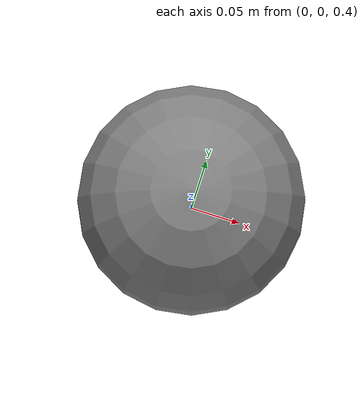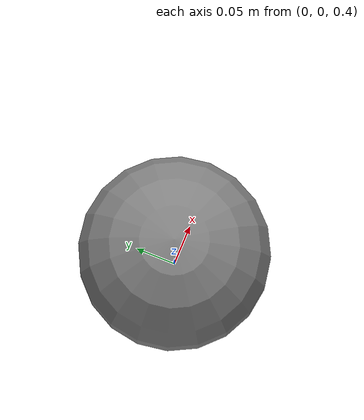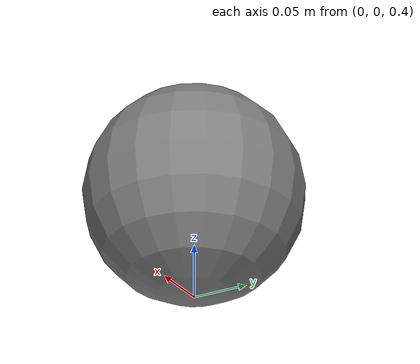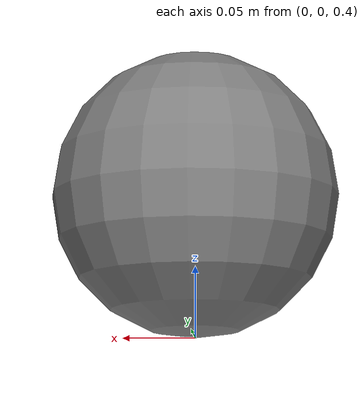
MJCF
<mujoco model="hidden_self_overlap_fixed">
  <worldbody>
    <body name="b1" pos="0 0 0.5">
      <joint name="j1" type="hinge" axis="0 1 0"/>
      <geom name="g1" type="sphere" size="0.1" mass="1.0" contype="1" conaffinity="0"/>
      <body name="b2" pos="0 0 0">
        <joint name="j2" type="hinge" axis="0 1 0"/>
        <geom name="g2" type="sphere" size="0.1" mass="1.0" contype="1" conaffinity="0"/>
      </body>
    </body>
  </worldbody>
  <contact>
    <exclude body1="b1" body2="b2"/>
  </contact>
</mujoco>
